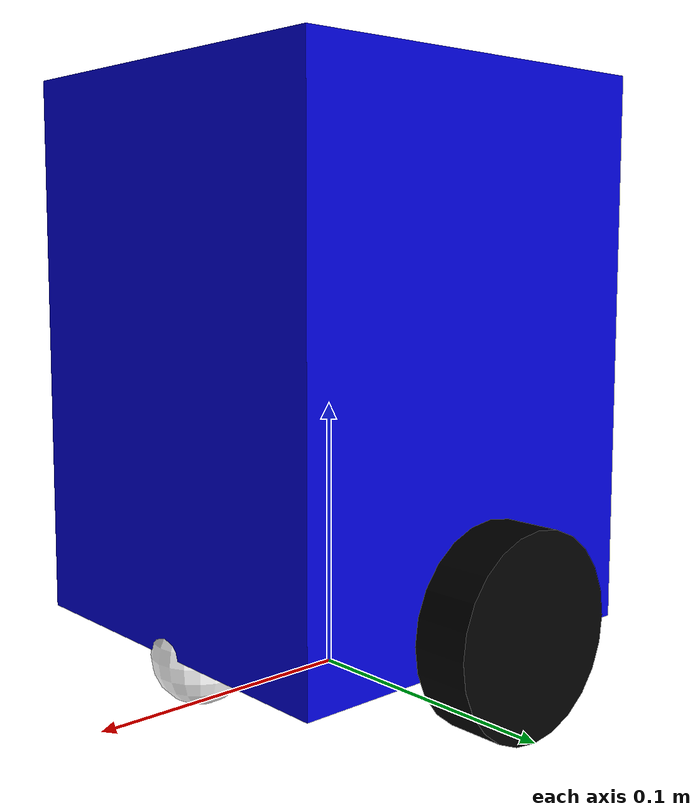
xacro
<?xml version="1.0"?>
<robot xmlns:xacro="http://www.ros.org/wiki/xacro" name="soccer_bot">

    <xacro:property name="chassis_mass" value="1.5"/> <xacro:property name="chassis_width" value="0.15"/> <xacro:property name="chassis_length" value="0.15"/> <xacro:property name="chassis_height" value="0.20"/> <material name="blue">
        <color rgba="0 0 0.8 1"/>
    </material>

    <link name="base_link">
    </link>

    <link name="chassis">
        <visual>
            <geometry>
                <box size="${chassis_length} ${chassis_width} ${chassis_height}"/>
            </geometry>
            <material name="blue"/>
        </visual>

        <collision>
            <geometry>
                <box size="${chassis_length} ${chassis_width} ${chassis_height}"/>
            </geometry>
        </collision>

        <inertial>
            <mass value="${chassis_mass}"/>
            <inertia ixx="${(1/12) * chassis_mass * (chassis_height*chassis_height + chassis_width*chassis_width)}"
                     ixy="0.0" ixz="0.0"
                     iyy="${(1/12) * chassis_mass * (chassis_length*chassis_length + chassis_height*chassis_height)}"
                     iyz="0.0"
                     izz="${(1/12) * chassis_mass * (chassis_length*chassis_length + chassis_width*chassis_width)}"/>
        </inertial>
    </link>

    <joint name="base_joint" type="fixed">
        <parent link="base_link"/>
        <child link="chassis"/>
        <origin xyz="0 0 ${chassis_height/2 + 0.02}"/> </joint>
<xacro:property name="wheel_radius" value="0.035"/> <xacro:property name="wheel_width" value="0.02"/>   <xacro:property name="wheel_mass" value="0.1"/>     <xacro:macro name="wheel_maker" params="prefix location_y">

        <link name="${prefix}_wheel">
            <visual>
                <geometry>
                    <cylinder radius="${wheel_radius}" length="${wheel_width}"/>
                </geometry>
                <material name="black">
                    <color rgba="0 0 0 1"/>
                </material>
            </visual>
            <collision>
                <geometry>
                    <cylinder radius="${wheel_radius}" length="${wheel_width}"/>
                </geometry>
            </collision>
            <inertial>
                <mass value="${wheel_mass}"/>
                <inertia ixx="${(1/12) * wheel_mass * (3*wheel_radius*wheel_radius + wheel_width*wheel_width)}"
                         ixy="0" ixz="0"
                         iyy="${(1/12) * wheel_mass * (3*wheel_radius*wheel_radius + wheel_width*wheel_width)}"
                         iyz="0"
                         izz="${(1/2) * wheel_mass * (wheel_radius*wheel_radius)}"/>
            </inertial>
        </link>

        <joint name="${prefix}_wheel_joint" type="continuous">
            <parent link="base_link"/>
            <child link="${prefix}_wheel"/>
            <origin xyz="0 ${location_y} ${wheel_radius}" rpy="-${pi/2} 0 0"/>
            <axis xyz="0 0 1"/> </joint>
    </xacro:macro>

    <xacro:wheel_maker prefix="left" location_y="${chassis_width/2 + 0.015}"/>

    <xacro:wheel_maker prefix="right" location_y="-${chassis_width/2 - 0.015}"/>

    <link name="caster_wheel">
        <visual>
            <geometry>
                <sphere radius="${wheel_radius/2}"/>
            </geometry>
            <material name="white">
                <color rgba="1 1 1 1"/>
            </material>
        </visual>
        <collision>
            <geometry>
                <sphere radius="${wheel_radius/2}"/>
            </geometry>
        </collision>
        <inertial>
            <mass value="0.05"/>
            <inertia ixx="0.0001" ixy="0" ixz="0" iyy="0.0001" iyz="0" izz="0.0001"/>
        </inertial>
    </link>

    <joint name="caster_joint" type="fixed">
        <parent link="base_link"/>
        <child link="caster_wheel"/>
        <origin xyz="0.06 0 ${wheel_radius/2}"/>
    </joint>

<gazebo reference="chassis">
        <material>Gazebo/Blue</material>
    </gazebo>
    <gazebo reference="left_wheel">
        <material>Gazebo/Black</material>
    </gazebo>
    <gazebo reference="right_wheel">
        <material>Gazebo/Black</material>
    </gazebo>
    <gazebo reference="caster_wheel">
        <material>Gazebo/White</material>
        <mu1>0.001</mu1>
        <mu2>0.001</mu2>
    </gazebo>

    <gazebo>
        <plugin filename="gz-sim-diff-drive-system" name="gz::sim::systems::DiffDrive">

            <left_joint>left_wheel_joint</left_joint>
            <right_joint>right_wheel_joint</right_joint>

            <wheel_separation>${chassis_width + wheel_width}</wheel_separation>
            <wheel_radius>${wheel_radius}</wheel_radius>

            <max_linear_acceleration>1</max_linear_acceleration>
            <min_linear_acceleration>-1</min_linear_acceleration>

            <topic>cmd_vel</topic> <odom_topic>odom</odom_topic> <tf_topic>tf</tf_topic>
            <frame_id>odom</frame_id>
            <child_frame_id>base_link</child_frame_id>
            <odom_publish_frequency>30</odom_publish_frequency>
        </plugin>
    </gazebo>

</robot>
